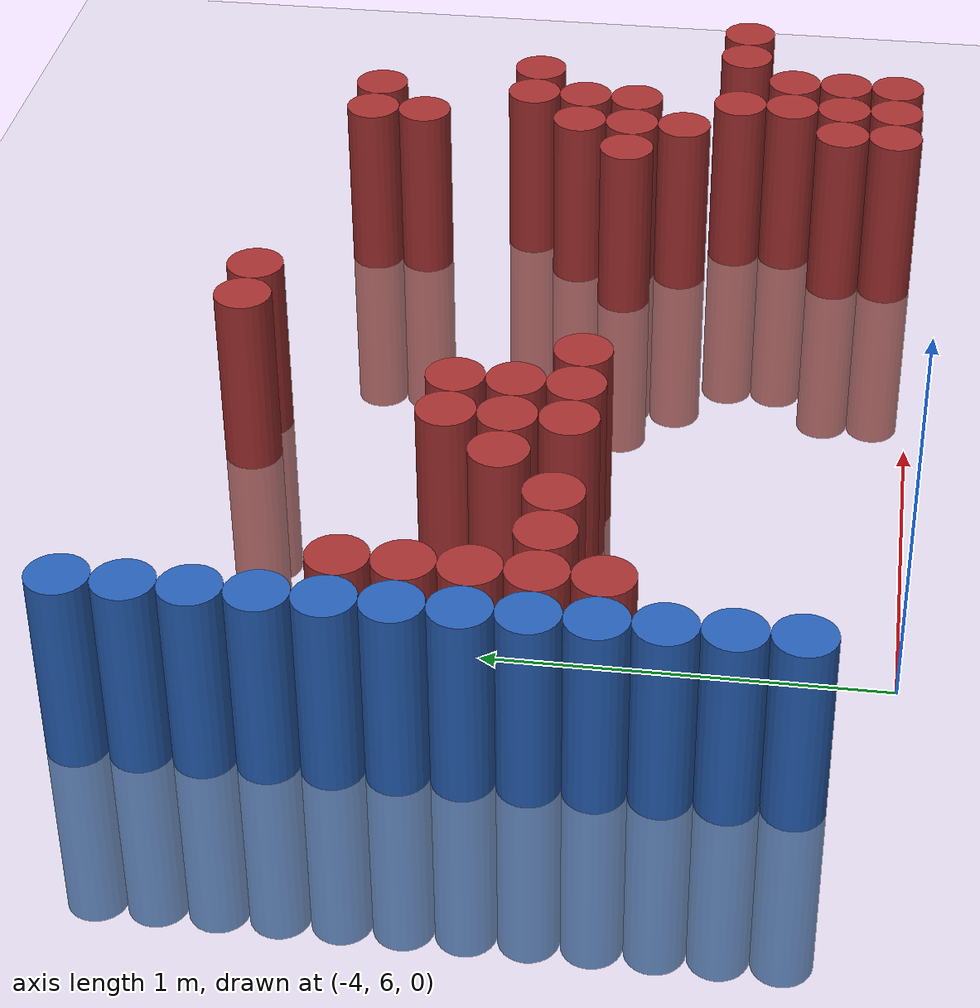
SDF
<sdf version="1.6">
 <world name="default">
  <model name="ground_plane">
   <static>1</static>
   <link name="link">
    <collision name="collision">
     <geometry><plane><normal>0 0 1</normal><size>100 100</size></plane></geometry>
     <surface><friction><ode><mu>100</mu><mu2>50</mu2></ode></friction></surface>
    </collision>
    <visual name="visual">
     <cast_shadows>0</cast_shadows>
     <geometry><plane><normal>0 0 1</normal><size>100 100</size></plane></geometry>
     <material>
      <script><uri>file://media/materials/scripts/gazebo.material</uri><name>Gazebo/Grey</name></script>
     </material>
    </visual>
   </link>
  </model>
  <model name="unit_cylinder_103">
   <static>1</static>
   <pose>-4.425000 6.225000 0.000000 0.000000 0.000000 0.000000</pose>
   <link name="link">
    <inertial>
     <mass>1</mass>
     <inertia><ixx>0.145833</ixx><ixy>0</ixy><ixz>0</ixz><iyy>0.145833</iyy><iyz>0</iyz><izz>0.125</izz></inertia>
    </inertial>
    <collision name="collision">
     <geometry><cylinder><radius>0.075000</radius><length>1</length></cylinder></geometry>
    </collision>
    <visual name="visual">
     <geometry><cylinder><radius>0.075000</radius><length>1</length></cylinder></geometry>
     <material>
      <ambient>0.152000 0.379000 0.720000 1</ambient>
      <diffuse>0.152000 0.379000 0.720000 1</diffuse>
     </material>
     <material>
      <script><name>Gazebo/Grey</name><uri>file://media/materials/scripts/gazebo.material</uri></script>
     </material>
    </visual>
   </link>
  </model>
  <model name="unit_cylinder_104">
   <static>1</static>
   <pose>-4.425000 6.375000 0.000000 0.000000 0.000000 0.000000</pose>
   <link name="link">
    <inertial>
     <mass>1</mass>
     <inertia><ixx>0.145833</ixx><ixy>0</ixy><ixz>0</ixz><iyy>0.145833</iyy><iyz>0</iyz><izz>0.125</izz></inertia>
    </inertial>
    <collision name="collision">
     <geometry><cylinder><radius>0.075000</radius><length>1</length></cylinder></geometry>
    </collision>
    <visual name="visual">
     <geometry><cylinder><radius>0.075000</radius><length>1</length></cylinder></geometry>
     <material>
      <ambient>0.152000 0.379000 0.720000 1</ambient>
      <diffuse>0.152000 0.379000 0.720000 1</diffuse>
     </material>
     <material>
      <script><name>Gazebo/Grey</name><uri>file://media/materials/scripts/gazebo.material</uri></script>
     </material>
    </visual>
   </link>
  </model>
  <model name="unit_cylinder_105">
   <static>1</static>
   <pose>-4.425000 6.525000 0.000000 0.000000 0.000000 0.000000</pose>
   <link name="link">
    <inertial>
     <mass>1</mass>
     <inertia><ixx>0.145833</ixx><ixy>0</ixy><ixz>0</ixz><iyy>0.145833</iyy><iyz>0</iyz><izz>0.125</izz></inertia>
    </inertial>
    <collision name="collision">
     <geometry><cylinder><radius>0.075000</radius><length>1</length></cylinder></geometry>
    </collision>
    <visual name="visual">
     <geometry><cylinder><radius>0.075000</radius><length>1</length></cylinder></geometry>
     <material>
      <ambient>0.152000 0.379000 0.720000 1</ambient>
      <diffuse>0.152000 0.379000 0.720000 1</diffuse>
     </material>
     <material>
      <script><name>Gazebo/Grey</name><uri>file://media/materials/scripts/gazebo.material</uri></script>
     </material>
    </visual>
   </link>
  </model>
  <model name="unit_cylinder_106">
   <static>1</static>
   <pose>-4.425000 6.675000 0.000000 0.000000 0.000000 0.000000</pose>
   <link name="link">
    <inertial>
     <mass>1</mass>
     <inertia><ixx>0.145833</ixx><ixy>0</ixy><ixz>0</ixz><iyy>0.145833</iyy><iyz>0</iyz><izz>0.125</izz></inertia>
    </inertial>
    <collision name="collision">
     <geometry><cylinder><radius>0.075000</radius><length>1</length></cylinder></geometry>
    </collision>
    <visual name="visual">
     <geometry><cylinder><radius>0.075000</radius><length>1</length></cylinder></geometry>
     <material>
      <ambient>0.152000 0.379000 0.720000 1</ambient>
      <diffuse>0.152000 0.379000 0.720000 1</diffuse>
     </material>
     <material>
      <script><name>Gazebo/Grey</name><uri>file://media/materials/scripts/gazebo.material</uri></script>
     </material>
    </visual>
   </link>
  </model>
  <model name="unit_cylinder_107">
   <static>1</static>
   <pose>-4.425000 6.825000 0.000000 0.000000 0.000000 0.000000</pose>
   <link name="link">
    <inertial>
     <mass>1</mass>
     <inertia><ixx>0.145833</ixx><ixy>0</ixy><ixz>0</ixz><iyy>0.145833</iyy><iyz>0</iyz><izz>0.125</izz></inertia>
    </inertial>
    <collision name="collision">
     <geometry><cylinder><radius>0.075000</radius><length>1</length></cylinder></geometry>
    </collision>
    <visual name="visual">
     <geometry><cylinder><radius>0.075000</radius><length>1</length></cylinder></geometry>
     <material>
      <ambient>0.152000 0.379000 0.720000 1</ambient>
      <diffuse>0.152000 0.379000 0.720000 1</diffuse>
     </material>
     <material>
      <script><name>Gazebo/Grey</name><uri>file://media/materials/scripts/gazebo.material</uri></script>
     </material>
    </visual>
   </link>
  </model>
  <model name="unit_cylinder_108">
   <static>1</static>
   <pose>-4.425000 6.975000 0.000000 0.000000 0.000000 0.000000</pose>
   <link name="link">
    <inertial>
     <mass>1</mass>
     <inertia><ixx>0.145833</ixx><ixy>0</ixy><ixz>0</ixz><iyy>0.145833</iyy><iyz>0</iyz><izz>0.125</izz></inertia>
    </inertial>
    <collision name="collision">
     <geometry><cylinder><radius>0.075000</radius><length>1</length></cylinder></geometry>
    </collision>
    <visual name="visual">
     <geometry><cylinder><radius>0.075000</radius><length>1</length></cylinder></geometry>
     <material>
      <ambient>0.152000 0.379000 0.720000 1</ambient>
      <diffuse>0.152000 0.379000 0.720000 1</diffuse>
     </material>
     <material>
      <script><name>Gazebo/Grey</name><uri>file://media/materials/scripts/gazebo.material</uri></script>
     </material>
    </visual>
   </link>
  </model>
  <model name="unit_cylinder_109">
   <static>1</static>
   <pose>-4.425000 7.125000 0.000000 0.000000 0.000000 0.000000</pose>
   <link name="link">
    <inertial>
     <mass>1</mass>
     <inertia><ixx>0.145833</ixx><ixy>0</ixy><ixz>0</ixz><iyy>0.145833</iyy><iyz>0</iyz><izz>0.125</izz></inertia>
    </inertial>
    <collision name="collision">
     <geometry><cylinder><radius>0.075000</radius><length>1</length></cylinder></geometry>
    </collision>
    <visual name="visual">
     <geometry><cylinder><radius>0.075000</radius><length>1</length></cylinder></geometry>
     <material>
      <ambient>0.152000 0.379000 0.720000 1</ambient>
      <diffuse>0.152000 0.379000 0.720000 1</diffuse>
     </material>
     <material>
      <script><name>Gazebo/Grey</name><uri>file://media/materials/scripts/gazebo.material</uri></script>
     </material>
    </visual>
   </link>
  </model>
  <model name="unit_cylinder_110">
   <static>1</static>
   <pose>-4.425000 7.275000 0.000000 0.000000 0.000000 0.000000</pose>
   <link name="link">
    <inertial>
     <mass>1</mass>
     <inertia><ixx>0.145833</ixx><ixy>0</ixy><ixz>0</ixz><iyy>0.145833</iyy><iyz>0</iyz><izz>0.125</izz></inertia>
    </inertial>
    <collision name="collision">
     <geometry><cylinder><radius>0.075000</radius><length>1</length></cylinder></geometry>
    </collision>
    <visual name="visual">
     <geometry><cylinder><radius>0.075000</radius><length>1</length></cylinder></geometry>
     <material>
      <ambient>0.152000 0.379000 0.720000 1</ambient>
      <diffuse>0.152000 0.379000 0.720000 1</diffuse>
     </material>
     <material>
      <script><name>Gazebo/Grey</name><uri>file://media/materials/scripts/gazebo.material</uri></script>
     </material>
    </visual>
   </link>
  </model>
  <model name="unit_cylinder_111">
   <static>1</static>
   <pose>-4.425000 7.425000 0.000000 0.000000 0.000000 0.000000</pose>
   <link name="link">
    <inertial>
     <mass>1</mass>
     <inertia><ixx>0.145833</ixx><ixy>0</ixy><ixz>0</ixz><iyy>0.145833</iyy><iyz>0</iyz><izz>0.125</izz></inertia>
    </inertial>
    <collision name="collision">
     <geometry><cylinder><radius>0.075000</radius><length>1</length></cylinder></geometry>
    </collision>
    <visual name="visual">
     <geometry><cylinder><radius>0.075000</radius><length>1</length></cylinder></geometry>
     <material>
      <ambient>0.152000 0.379000 0.720000 1</ambient>
      <diffuse>0.152000 0.379000 0.720000 1</diffuse>
     </material>
     <material>
      <script><name>Gazebo/Grey</name><uri>file://media/materials/scripts/gazebo.material</uri></script>
     </material>
    </visual>
   </link>
  </model>
  <model name="unit_cylinder_112">
   <static>1</static>
   <pose>-4.425000 7.575000 0.000000 0.000000 0.000000 0.000000</pose>
   <link name="link">
    <inertial>
     <mass>1</mass>
     <inertia><ixx>0.145833</ixx><ixy>0</ixy><ixz>0</ixz><iyy>0.145833</iyy><iyz>0</iyz><izz>0.125</izz></inertia>
    </inertial>
    <collision name="collision">
     <geometry><cylinder><radius>0.075000</radius><length>1</length></cylinder></geometry>
    </collision>
    <visual name="visual">
     <geometry><cylinder><radius>0.075000</radius><length>1</length></cylinder></geometry>
     <material>
      <ambient>0.152000 0.379000 0.720000 1</ambient>
      <diffuse>0.152000 0.379000 0.720000 1</diffuse>
     </material>
     <material>
      <script><name>Gazebo/Grey</name><uri>file://media/materials/scripts/gazebo.material</uri></script>
     </material>
    </visual>
   </link>
  </model>
  <model name="unit_cylinder_113">
   <static>1</static>
   <pose>-4.425000 7.725000 0.000000 0.000000 0.000000 0.000000</pose>
   <link name="link">
    <inertial>
     <mass>1</mass>
     <inertia><ixx>0.145833</ixx><ixy>0</ixy><ixz>0</ixz><iyy>0.145833</iyy><iyz>0</iyz><izz>0.125</izz></inertia>
    </inertial>
    <collision name="collision">
     <geometry><cylinder><radius>0.075000</radius><length>1</length></cylinder></geometry>
    </collision>
    <visual name="visual">
     <geometry><cylinder><radius>0.075000</radius><length>1</length></cylinder></geometry>
     <material>
      <ambient>0.152000 0.379000 0.720000 1</ambient>
      <diffuse>0.152000 0.379000 0.720000 1</diffuse>
     </material>
     <material>
      <script><name>Gazebo/Grey</name><uri>file://media/materials/scripts/gazebo.material</uri></script>
     </material>
    </visual>
   </link>
  </model>
  <model name="unit_cylinder_114">
   <static>1</static>
   <pose>-4.425000 7.875000 0.000000 0.000000 0.000000 0.000000</pose>
   <link name="link">
    <inertial>
     <mass>1</mass>
     <inertia><ixx>0.145833</ixx><ixy>0</ixy><ixz>0</ixz><iyy>0.145833</iyy><iyz>0</iyz><izz>0.125</izz></inertia>
    </inertial>
    <collision name="collision">
     <geometry><cylinder><radius>0.075000</radius><length>1</length></cylinder></geometry>
    </collision>
    <visual name="visual">
     <geometry><cylinder><radius>0.075000</radius><length>1</length></cylinder></geometry>
     <material>
      <ambient>0.152000 0.379000 0.720000 1</ambient>
      <diffuse>0.152000 0.379000 0.720000 1</diffuse>
     </material>
     <material>
      <script><name>Gazebo/Grey</name><uri>file://media/materials/scripts/gazebo.material</uri></script>
     </material>
    </visual>
   </link>
  </model>
  <model name="unit_cylinder_129">
   <static>1</static>
   <pose>-4.275000 6.675000 0.000000 0.000000 0.000000 0.000000</pose>
   <link name="link">
    <inertial>
     <mass>1</mass>
     <inertia><ixx>0.145833</ixx><ixy>0</ixy><ixz>0</ixz><iyy>0.145833</iyy><iyz>0</iyz><izz>0.125</izz></inertia>
    </inertial>
    <collision name="collision">
     <geometry><cylinder><radius>0.075000</radius><length>1</length></cylinder></geometry>
    </collision>
    <visual name="visual">
     <geometry><cylinder><radius>0.075000</radius><length>1</length></cylinder></geometry>
     <material>
      <ambient>0.648000 0.192000 0.192000 1</ambient>
      <diffuse>0.648000 0.192000 0.192000 1</diffuse>
     </material>
     <material>
      <script><name>Gazebo/Grey</name><uri>file://media/materials/scripts/gazebo.material</uri></script>
     </material>
    </visual>
   </link>
  </model>
  <model name="unit_cylinder_130">
   <static>1</static>
   <pose>-4.275000 6.825000 0.000000 0.000000 0.000000 0.000000</pose>
   <link name="link">
    <inertial>
     <mass>1</mass>
     <inertia><ixx>0.145833</ixx><ixy>0</ixy><ixz>0</ixz><iyy>0.145833</iyy><iyz>0</iyz><izz>0.125</izz></inertia>
    </inertial>
    <collision name="collision">
     <geometry><cylinder><radius>0.075000</radius><length>1</length></cylinder></geometry>
    </collision>
    <visual name="visual">
     <geometry><cylinder><radius>0.075000</radius><length>1</length></cylinder></geometry>
     <material>
      <ambient>0.648000 0.192000 0.192000 1</ambient>
      <diffuse>0.648000 0.192000 0.192000 1</diffuse>
     </material>
     <material>
      <script><name>Gazebo/Grey</name><uri>file://media/materials/scripts/gazebo.material</uri></script>
     </material>
    </visual>
   </link>
  </model>
  <model name="unit_cylinder_131">
   <static>1</static>
   <pose>-4.275000 6.975000 0.000000 0.000000 0.000000 0.000000</pose>
   <link name="link">
    <inertial>
     <mass>1</mass>
     <inertia><ixx>0.145833</ixx><ixy>0</ixy><ixz>0</ixz><iyy>0.145833</iyy><iyz>0</iyz><izz>0.125</izz></inertia>
    </inertial>
    <collision name="collision">
     <geometry><cylinder><radius>0.075000</radius><length>1</length></cylinder></geometry>
    </collision>
    <visual name="visual">
     <geometry><cylinder><radius>0.075000</radius><length>1</length></cylinder></geometry>
     <material>
      <ambient>0.648000 0.192000 0.192000 1</ambient>
      <diffuse>0.648000 0.192000 0.192000 1</diffuse>
     </material>
     <material>
      <script><name>Gazebo/Grey</name><uri>file://media/materials/scripts/gazebo.material</uri></script>
     </material>
    </visual>
   </link>
  </model>
  <model name="unit_cylinder_132">
   <static>1</static>
   <pose>-4.275000 7.125000 0.000000 0.000000 0.000000 0.000000</pose>
   <link name="link">
    <inertial>
     <mass>1</mass>
     <inertia><ixx>0.145833</ixx><ixy>0</ixy><ixz>0</ixz><iyy>0.145833</iyy><iyz>0</iyz><izz>0.125</izz></inertia>
    </inertial>
    <collision name="collision">
     <geometry><cylinder><radius>0.075000</radius><length>1</length></cylinder></geometry>
    </collision>
    <visual name="visual">
     <geometry><cylinder><radius>0.075000</radius><length>1</length></cylinder></geometry>
     <material>
      <ambient>0.648000 0.192000 0.192000 1</ambient>
      <diffuse>0.648000 0.192000 0.192000 1</diffuse>
     </material>
     <material>
      <script><name>Gazebo/Grey</name><uri>file://media/materials/scripts/gazebo.material</uri></script>
     </material>
    </visual>
   </link>
  </model>
  <model name="unit_cylinder_133">
   <static>1</static>
   <pose>-4.275000 7.275000 0.000000 0.000000 0.000000 0.000000</pose>
   <link name="link">
    <inertial>
     <mass>1</mass>
     <inertia><ixx>0.145833</ixx><ixy>0</ixy><ixz>0</ixz><iyy>0.145833</iyy><iyz>0</iyz><izz>0.125</izz></inertia>
    </inertial>
    <collision name="collision">
     <geometry><cylinder><radius>0.075000</radius><length>1</length></cylinder></geometry>
    </collision>
    <visual name="visual">
     <geometry><cylinder><radius>0.075000</radius><length>1</length></cylinder></geometry>
     <material>
      <ambient>0.648000 0.192000 0.192000 1</ambient>
      <diffuse>0.648000 0.192000 0.192000 1</diffuse>
     </material>
     <material>
      <script><name>Gazebo/Grey</name><uri>file://media/materials/scripts/gazebo.material</uri></script>
     </material>
    </visual>
   </link>
  </model>
  <model name="unit_cylinder_140">
   <static>1</static>
   <pose>-4.125000 6.825000 0.000000 0.000000 0.000000 0.000000</pose>
   <link name="link">
    <inertial>
     <mass>1</mass>
     <inertia><ixx>0.145833</ixx><ixy>0</ixy><ixz>0</ixz><iyy>0.145833</iyy><iyz>0</iyz><izz>0.125</izz></inertia>
    </inertial>
    <collision name="collision">
     <geometry><cylinder><radius>0.075000</radius><length>1</length></cylinder></geometry>
    </collision>
    <visual name="visual">
     <geometry><cylinder><radius>0.075000</radius><length>1</length></cylinder></geometry>
     <material>
      <ambient>0.648000 0.192000 0.192000 1</ambient>
      <diffuse>0.648000 0.192000 0.192000 1</diffuse>
     </material>
     <material>
      <script><name>Gazebo/Grey</name><uri>file://media/materials/scripts/gazebo.material</uri></script>
     </material>
    </visual>
   </link>
  </model>
  <model name="unit_cylinder_148">
   <static>1</static>
   <pose>-3.975000 6.825000 0.000000 0.000000 0.000000 0.000000</pose>
   <link name="link">
    <inertial>
     <mass>1</mass>
     <inertia><ixx>0.145833</ixx><ixy>0</ixy><ixz>0</ixz><iyy>0.145833</iyy><iyz>0</iyz><izz>0.125</izz></inertia>
    </inertial>
    <collision name="collision">
     <geometry><cylinder><radius>0.075000</radius><length>1</length></cylinder></geometry>
    </collision>
    <visual name="visual">
     <geometry><cylinder><radius>0.075000</radius><length>1</length></cylinder></geometry>
     <material>
      <ambient>0.648000 0.192000 0.192000 1</ambient>
      <diffuse>0.648000 0.192000 0.192000 1</diffuse>
     </material>
     <material>
      <script><name>Gazebo/Grey</name><uri>file://media/materials/scripts/gazebo.material</uri></script>
     </material>
    </visual>
   </link>
  </model>
  <model name="unit_cylinder_153">
   <static>1</static>
   <pose>-3.825000 6.975000 0.000000 0.000000 0.000000 0.000000</pose>
   <link name="link">
    <inertial>
     <mass>1</mass>
     <inertia><ixx>0.145833</ixx><ixy>0</ixy><ixz>0</ixz><iyy>0.145833</iyy><iyz>0</iyz><izz>0.125</izz></inertia>
    </inertial>
    <collision name="collision">
     <geometry><cylinder><radius>0.075000</radius><length>1</length></cylinder></geometry>
    </collision>
    <visual name="visual">
     <geometry><cylinder><radius>0.075000</radius><length>1</length></cylinder></geometry>
     <material>
      <ambient>0.648000 0.192000 0.192000 1</ambient>
      <diffuse>0.648000 0.192000 0.192000 1</diffuse>
     </material>
     <material>
      <script><name>Gazebo/Grey</name><uri>file://media/materials/scripts/gazebo.material</uri></script>
     </material>
    </visual>
   </link>
  </model>
  <model name="unit_cylinder_160">
   <static>1</static>
   <pose>-3.675000 6.825000 0.000000 0.000000 0.000000 0.000000</pose>
   <link name="link">
    <inertial>
     <mass>1</mass>
     <inertia><ixx>0.145833</ixx><ixy>0</ixy><ixz>0</ixz><iyy>0.145833</iyy><iyz>0</iyz><izz>0.125</izz></inertia>
    </inertial>
    <collision name="collision">
     <geometry><cylinder><radius>0.075000</radius><length>1</length></cylinder></geometry>
    </collision>
    <visual name="visual">
     <geometry><cylinder><radius>0.075000</radius><length>1</length></cylinder></geometry>
     <material>
      <ambient>0.648000 0.192000 0.192000 1</ambient>
      <diffuse>0.648000 0.192000 0.192000 1</diffuse>
     </material>
     <material>
      <script><name>Gazebo/Grey</name><uri>file://media/materials/scripts/gazebo.material</uri></script>
     </material>
    </visual>
   </link>
  </model>
  <model name="unit_cylinder_161">
   <static>1</static>
   <pose>-3.675000 6.975000 0.000000 0.000000 0.000000 0.000000</pose>
   <link name="link">
    <inertial>
     <mass>1</mass>
     <inertia><ixx>0.145833</ixx><ixy>0</ixy><ixz>0</ixz><iyy>0.145833</iyy><iyz>0</iyz><izz>0.125</izz></inertia>
    </inertial>
    <collision name="collision">
     <geometry><cylinder><radius>0.075000</radius><length>1</length></cylinder></geometry>
    </collision>
    <visual name="visual">
     <geometry><cylinder><radius>0.075000</radius><length>1</length></cylinder></geometry>
     <material>
      <ambient>0.648000 0.192000 0.192000 1</ambient>
      <diffuse>0.648000 0.192000 0.192000 1</diffuse>
     </material>
     <material>
      <script><name>Gazebo/Grey</name><uri>file://media/materials/scripts/gazebo.material</uri></script>
     </material>
    </visual>
   </link>
  </model>
  <model name="unit_cylinder_162">
   <static>1</static>
   <pose>-3.675000 7.125000 0.000000 0.000000 0.000000 0.000000</pose>
   <link name="link">
    <inertial>
     <mass>1</mass>
     <inertia><ixx>0.145833</ixx><ixy>0</ixy><ixz>0</ixz><iyy>0.145833</iyy><iyz>0</iyz><izz>0.125</izz></inertia>
    </inertial>
    <collision name="collision">
     <geometry><cylinder><radius>0.075000</radius><length>1</length></cylinder></geometry>
    </collision>
    <visual name="visual">
     <geometry><cylinder><radius>0.075000</radius><length>1</length></cylinder></geometry>
     <material>
      <ambient>0.648000 0.192000 0.192000 1</ambient>
      <diffuse>0.648000 0.192000 0.192000 1</diffuse>
     </material>
     <material>
      <script><name>Gazebo/Grey</name><uri>file://media/materials/scripts/gazebo.material</uri></script>
     </material>
    </visual>
   </link>
  </model>
  <model name="unit_cylinder_172">
   <static>1</static>
   <pose>-3.525000 6.825000 0.000000 0.000000 0.000000 0.000000</pose>
   <link name="link">
    <inertial>
     <mass>1</mass>
     <inertia><ixx>0.145833</ixx><ixy>0</ixy><ixz>0</ixz><iyy>0.145833</iyy><iyz>0</iyz><izz>0.125</izz></inertia>
    </inertial>
    <collision name="collision">
     <geometry><cylinder><radius>0.075000</radius><length>1</length></cylinder></geometry>
    </collision>
    <visual name="visual">
     <geometry><cylinder><radius>0.075000</radius><length>1</length></cylinder></geometry>
     <material>
      <ambient>0.648000 0.192000 0.192000 1</ambient>
      <diffuse>0.648000 0.192000 0.192000 1</diffuse>
     </material>
     <material>
      <script><name>Gazebo/Grey</name><uri>file://media/materials/scripts/gazebo.material</uri></script>
     </material>
    </visual>
   </link>
  </model>
  <model name="unit_cylinder_173">
   <static>1</static>
   <pose>-3.525000 6.975000 0.000000 0.000000 0.000000 0.000000</pose>
   <link name="link">
    <inertial>
     <mass>1</mass>
     <inertia><ixx>0.145833</ixx><ixy>0</ixy><ixz>0</ixz><iyy>0.145833</iyy><iyz>0</iyz><izz>0.125</izz></inertia>
    </inertial>
    <collision name="collision">
     <geometry><cylinder><radius>0.075000</radius><length>1</length></cylinder></geometry>
    </collision>
    <visual name="visual">
     <geometry><cylinder><radius>0.075000</radius><length>1</length></cylinder></geometry>
     <material>
      <ambient>0.648000 0.192000 0.192000 1</ambient>
      <diffuse>0.648000 0.192000 0.192000 1</diffuse>
     </material>
     <material>
      <script><name>Gazebo/Grey</name><uri>file://media/materials/scripts/gazebo.material</uri></script>
     </material>
    </visual>
   </link>
  </model>
  <model name="unit_cylinder_174">
   <static>1</static>
   <pose>-3.525000 7.125000 0.000000 0.000000 0.000000 0.000000</pose>
   <link name="link">
    <inertial>
     <mass>1</mass>
     <inertia><ixx>0.145833</ixx><ixy>0</ixy><ixz>0</ixz><iyy>0.145833</iyy><iyz>0</iyz><izz>0.125</izz></inertia>
    </inertial>
    <collision name="collision">
     <geometry><cylinder><radius>0.075000</radius><length>1</length></cylinder></geometry>
    </collision>
    <visual name="visual">
     <geometry><cylinder><radius>0.075000</radius><length>1</length></cylinder></geometry>
     <material>
      <ambient>0.648000 0.192000 0.192000 1</ambient>
      <diffuse>0.648000 0.192000 0.192000 1</diffuse>
     </material>
     <material>
      <script><name>Gazebo/Grey</name><uri>file://media/materials/scripts/gazebo.material</uri></script>
     </material>
    </visual>
   </link>
  </model>
  <model name="unit_cylinder_179">
   <static>1</static>
   <pose>-3.375000 6.825000 0.000000 0.000000 0.000000 0.000000</pose>
   <link name="link">
    <inertial>
     <mass>1</mass>
     <inertia><ixx>0.145833</ixx><ixy>0</ixy><ixz>0</ixz><iyy>0.145833</iyy><iyz>0</iyz><izz>0.125</izz></inertia>
    </inertial>
    <collision name="collision">
     <geometry><cylinder><radius>0.075000</radius><length>1</length></cylinder></geometry>
    </collision>
    <visual name="visual">
     <geometry><cylinder><radius>0.075000</radius><length>1</length></cylinder></geometry>
     <material>
      <ambient>0.648000 0.192000 0.192000 1</ambient>
      <diffuse>0.648000 0.192000 0.192000 1</diffuse>
     </material>
     <material>
      <script><name>Gazebo/Grey</name><uri>file://media/materials/scripts/gazebo.material</uri></script>
     </material>
    </visual>
   </link>
  </model>
  <model name="unit_cylinder_185">
   <static>1</static>
   <pose>-3.225000 7.725000 0.000000 0.000000 0.000000 0.000000</pose>
   <link name="link">
    <inertial>
     <mass>1</mass>
     <inertia><ixx>0.145833</ixx><ixy>0</ixy><ixz>0</ixz><iyy>0.145833</iyy><iyz>0</iyz><izz>0.125</izz></inertia>
    </inertial>
    <collision name="collision">
     <geometry><cylinder><radius>0.075000</radius><length>1</length></cylinder></geometry>
    </collision>
    <visual name="visual">
     <geometry><cylinder><radius>0.075000</radius><length>1</length></cylinder></geometry>
     <material>
      <ambient>0.648000 0.192000 0.192000 1</ambient>
      <diffuse>0.648000 0.192000 0.192000 1</diffuse>
     </material>
     <material>
      <script><name>Gazebo/Grey</name><uri>file://media/materials/scripts/gazebo.material</uri></script>
     </material>
    </visual>
   </link>
  </model>
  <model name="unit_cylinder_189">
   <static>1</static>
   <pose>-3.075000 7.725000 0.000000 0.000000 0.000000 0.000000</pose>
   <link name="link">
    <inertial>
     <mass>1</mass>
     <inertia><ixx>0.145833</ixx><ixy>0</ixy><ixz>0</ixz><iyy>0.145833</iyy><iyz>0</iyz><izz>0.125</izz></inertia>
    </inertial>
    <collision name="collision">
     <geometry><cylinder><radius>0.075000</radius><length>1</length></cylinder></geometry>
    </collision>
    <visual name="visual">
     <geometry><cylinder><radius>0.075000</radius><length>1</length></cylinder></geometry>
     <material>
      <ambient>0.648000 0.192000 0.192000 1</ambient>
      <diffuse>0.648000 0.192000 0.192000 1</diffuse>
     </material>
     <material>
      <script><name>Gazebo/Grey</name><uri>file://media/materials/scripts/gazebo.material</uri></script>
     </material>
    </visual>
   </link>
  </model>
  <model name="unit_cylinder_196">
   <static>1</static>
   <pose>-2.325000 6.825000 0.000000 0.000000 0.000000 0.000000</pose>
   <link name="link">
    <inertial>
     <mass>1</mass>
     <inertia><ixx>0.145833</ixx><ixy>0</ixy><ixz>0</ixz><iyy>0.145833</iyy><iyz>0</iyz><izz>0.125</izz></inertia>
    </inertial>
    <collision name="collision">
     <geometry><cylinder><radius>0.075000</radius><length>1</length></cylinder></geometry>
    </collision>
    <visual name="visual">
     <geometry><cylinder><radius>0.075000</radius><length>1</length></cylinder></geometry>
     <material>
      <ambient>0.648000 0.192000 0.192000 1</ambient>
      <diffuse>0.648000 0.192000 0.192000 1</diffuse>
     </material>
     <material>
      <script><name>Gazebo/Grey</name><uri>file://media/materials/scripts/gazebo.material</uri></script>
     </material>
    </visual>
   </link>
  </model>
  <model name="unit_cylinder_199">
   <static>1</static>
   <pose>-2.175000 6.075000 0.000000 0.000000 0.000000 0.000000</pose>
   <link name="link">
    <inertial>
     <mass>1</mass>
     <inertia><ixx>0.145833</ixx><ixy>0</ixy><ixz>0</ixz><iyy>0.145833</iyy><iyz>0</iyz><izz>0.125</izz></inertia>
    </inertial>
    <collision name="collision">
     <geometry><cylinder><radius>0.075000</radius><length>1</length></cylinder></geometry>
    </collision>
    <visual name="visual">
     <geometry><cylinder><radius>0.075000</radius><length>1</length></cylinder></geometry>
     <material>
      <ambient>0.648000 0.192000 0.192000 1</ambient>
      <diffuse>0.648000 0.192000 0.192000 1</diffuse>
     </material>
     <material>
      <script><name>Gazebo/Grey</name><uri>file://media/materials/scripts/gazebo.material</uri></script>
     </material>
    </visual>
   </link>
  </model>
  <model name="unit_cylinder_200">
   <static>1</static>
   <pose>-2.175000 6.225000 0.000000 0.000000 0.000000 0.000000</pose>
   <link name="link">
    <inertial>
     <mass>1</mass>
     <inertia><ixx>0.145833</ixx><ixy>0</ixy><ixz>0</ixz><iyy>0.145833</iyy><iyz>0</iyz><izz>0.125</izz></inertia>
    </inertial>
    <collision name="collision">
     <geometry><cylinder><radius>0.075000</radius><length>1</length></cylinder></geometry>
    </collision>
    <visual name="visual">
     <geometry><cylinder><radius>0.075000</radius><length>1</length></cylinder></geometry>
     <material>
      <ambient>0.648000 0.192000 0.192000 1</ambient>
      <diffuse>0.648000 0.192000 0.192000 1</diffuse>
     </material>
     <material>
      <script><name>Gazebo/Grey</name><uri>file://media/materials/scripts/gazebo.material</uri></script>
     </material>
    </visual>
   </link>
  </model>
  <model name="unit_cylinder_201">
   <static>1</static>
   <pose>-2.175000 6.675000 0.000000 0.000000 0.000000 0.000000</pose>
   <link name="link">
    <inertial>
     <mass>1</mass>
     <inertia><ixx>0.145833</ixx><ixy>0</ixy><ixz>0</ixz><iyy>0.145833</iyy><iyz>0</iyz><izz>0.125</izz></inertia>
    </inertial>
    <collision name="collision">
     <geometry><cylinder><radius>0.075000</radius><length>1</length></cylinder></geometry>
    </collision>
    <visual name="visual">
     <geometry><cylinder><radius>0.075000</radius><length>1</length></cylinder></geometry>
     <material>
      <ambient>0.648000 0.192000 0.192000 1</ambient>
      <diffuse>0.648000 0.192000 0.192000 1</diffuse>
     </material>
     <material>
      <script><name>Gazebo/Grey</name><uri>file://media/materials/scripts/gazebo.material</uri></script>
     </material>
    </visual>
   </link>
  </model>
  <model name="unit_cylinder_202">
   <static>1</static>
   <pose>-2.175000 6.825000 0.000000 0.000000 0.000000 0.000000</pose>
   <link name="link">
    <inertial>
     <mass>1</mass>
     <inertia><ixx>0.145833</ixx><ixy>0</ixy><ixz>0</ixz><iyy>0.145833</iyy><iyz>0</iyz><izz>0.125</izz></inertia>
    </inertial>
    <collision name="collision">
     <geometry><cylinder><radius>0.075000</radius><length>1</length></cylinder></geometry>
    </collision>
    <visual name="visual">
     <geometry><cylinder><radius>0.075000</radius><length>1</length></cylinder></geometry>
     <material>
      <ambient>0.648000 0.192000 0.192000 1</ambient>
      <diffuse>0.648000 0.192000 0.192000 1</diffuse>
     </material>
     <material>
      <script><name>Gazebo/Grey</name><uri>file://media/materials/scripts/gazebo.material</uri></script>
     </material>
    </visual>
   </link>
  </model>
  <model name="unit_cylinder_203">
   <static>1</static>
   <pose>-2.175000 6.975000 0.000000 0.000000 0.000000 0.000000</pose>
   <link name="link">
    <inertial>
     <mass>1</mass>
     <inertia><ixx>0.145833</ixx><ixy>0</ixy><ixz>0</ixz><iyy>0.145833</iyy><iyz>0</iyz><izz>0.125</izz></inertia>
    </inertial>
    <collision name="collision">
     <geometry><cylinder><radius>0.075000</radius><length>1</length></cylinder></geometry>
    </collision>
    <visual name="visual">
     <geometry><cylinder><radius>0.075000</radius><length>1</length></cylinder></geometry>
     <material>
      <ambient>0.648000 0.192000 0.192000 1</ambient>
      <diffuse>0.648000 0.192000 0.192000 1</diffuse>
     </material>
     <material>
      <script><name>Gazebo/Grey</name><uri>file://media/materials/scripts/gazebo.material</uri></script>
     </material>
    </visual>
   </link>
  </model>
  <model name="unit_cylinder_204">
   <static>1</static>
   <pose>-2.175000 7.425000 0.000000 0.000000 0.000000 0.000000</pose>
   <link name="link">
    <inertial>
     <mass>1</mass>
     <inertia><ixx>0.145833</ixx><ixy>0</ixy><ixz>0</ixz><iyy>0.145833</iyy><iyz>0</iyz><izz>0.125</izz></inertia>
    </inertial>
    <collision name="collision">
     <geometry><cylinder><radius>0.075000</radius><length>1</length></cylinder></geometry>
    </collision>
    <visual name="visual">
     <geometry><cylinder><radius>0.075000</radius><length>1</length></cylinder></geometry>
     <material>
      <ambient>0.648000 0.192000 0.192000 1</ambient>
      <diffuse>0.648000 0.192000 0.192000 1</diffuse>
     </material>
     <material>
      <script><name>Gazebo/Grey</name><uri>file://media/materials/scripts/gazebo.material</uri></script>
     </material>
    </visual>
   </link>
  </model>
  <model name="unit_cylinder_205">
   <static>1</static>
   <pose>-2.175000 7.575000 0.000000 0.000000 0.000000 0.000000</pose>
   <link name="link">
    <inertial>
     <mass>1</mass>
     <inertia><ixx>0.145833</ixx><ixy>0</ixy><ixz>0</ixz><iyy>0.145833</iyy><iyz>0</iyz><izz>0.125</izz></inertia>
    </inertial>
    <collision name="collision">
     <geometry><cylinder><radius>0.075000</radius><length>1</length></cylinder></geometry>
    </collision>
    <visual name="visual">
     <geometry><cylinder><radius>0.075000</radius><length>1</length></cylinder></geometry>
     <material>
      <ambient>0.648000 0.192000 0.192000 1</ambient>
      <diffuse>0.648000 0.192000 0.192000 1</diffuse>
     </material>
     <material>
      <script><name>Gazebo/Grey</name><uri>file://media/materials/scripts/gazebo.material</uri></script>
     </material>
    </visual>
   </link>
  </model>
  <model name="unit_cylinder_209">
   <static>1</static>
   <pose>-2.025000 6.075000 0.000000 0.000000 0.000000 0.000000</pose>
   <link name="link">
    <inertial>
     <mass>1</mass>
     <inertia><ixx>0.145833</ixx><ixy>0</ixy><ixz>0</ixz><iyy>0.145833</iyy><iyz>0</iyz><izz>0.125</izz></inertia>
    </inertial>
    <collision name="collision">
     <geometry><cylinder><radius>0.075000</radius><length>1</length></cylinder></geometry>
    </collision>
    <visual name="visual">
     <geometry><cylinder><radius>0.075000</radius><length>1</length></cylinder></geometry>
     <material>
      <ambient>0.648000 0.192000 0.192000 1</ambient>
      <diffuse>0.648000 0.192000 0.192000 1</diffuse>
     </material>
     <material>
      <script><name>Gazebo/Grey</name><uri>file://media/materials/scripts/gazebo.material</uri></script>
     </material>
    </visual>
   </link>
  </model>
  <model name="unit_cylinder_210">
   <static>1</static>
   <pose>-2.025000 6.225000 0.000000 0.000000 0.000000 0.000000</pose>
   <link name="link">
    <inertial>
     <mass>1</mass>
     <inertia><ixx>0.145833</ixx><ixy>0</ixy><ixz>0</ixz><iyy>0.145833</iyy><iyz>0</iyz><izz>0.125</izz></inertia>
    </inertial>
    <collision name="collision">
     <geometry><cylinder><radius>0.075000</radius><length>1</length></cylinder></geometry>
    </collision>
    <visual name="visual">
     <geometry><cylinder><radius>0.075000</radius><length>1</length></cylinder></geometry>
     <material>
      <ambient>0.648000 0.192000 0.192000 1</ambient>
      <diffuse>0.648000 0.192000 0.192000 1</diffuse>
     </material>
     <material>
      <script><name>Gazebo/Grey</name><uri>file://media/materials/scripts/gazebo.material</uri></script>
     </material>
    </visual>
   </link>
  </model>
  <model name="unit_cylinder_211">
   <static>1</static>
   <pose>-2.025000 6.375000 0.000000 0.000000 0.000000 0.000000</pose>
   <link name="link">
    <inertial>
     <mass>1</mass>
     <inertia><ixx>0.145833</ixx><ixy>0</ixy><ixz>0</ixz><iyy>0.145833</iyy><iyz>0</iyz><izz>0.125</izz></inertia>
    </inertial>
    <collision name="collision">
     <geometry><cylinder><radius>0.075000</radius><length>1</length></cylinder></geometry>
    </collision>
    <visual name="visual">
     <geometry><cylinder><radius>0.075000</radius><length>1</length></cylinder></geometry>
     <material>
      <ambient>0.648000 0.192000 0.192000 1</ambient>
      <diffuse>0.648000 0.192000 0.192000 1</diffuse>
     </material>
     <material>
      <script><name>Gazebo/Grey</name><uri>file://media/materials/scripts/gazebo.material</uri></script>
     </material>
    </visual>
   </link>
  </model>
  <model name="unit_cylinder_212">
   <static>1</static>
   <pose>-2.025000 6.525000 0.000000 0.000000 0.000000 0.000000</pose>
   <link name="link">
    <inertial>
     <mass>1</mass>
     <inertia><ixx>0.145833</ixx><ixy>0</ixy><ixz>0</ixz><iyy>0.145833</iyy><iyz>0</iyz><izz>0.125</izz></inertia>
    </inertial>
    <collision name="collision">
     <geometry><cylinder><radius>0.075000</radius><length>1</length></cylinder></geometry>
    </collision>
    <visual name="visual">
     <geometry><cylinder><radius>0.075000</radius><length>1</length></cylinder></geometry>
     <material>
      <ambient>0.648000 0.192000 0.192000 1</ambient>
      <diffuse>0.648000 0.192000 0.192000 1</diffuse>
     </material>
     <material>
      <script><name>Gazebo/Grey</name><uri>file://media/materials/scripts/gazebo.material</uri></script>
     </material>
    </visual>
   </link>
  </model>
  <model name="unit_cylinder_213">
   <static>1</static>
   <pose>-2.025000 6.825000 0.000000 0.000000 0.000000 0.000000</pose>
   <link name="link">
    <inertial>
     <mass>1</mass>
     <inertia><ixx>0.145833</ixx><ixy>0</ixy><ixz>0</ixz><iyy>0.145833</iyy><iyz>0</iyz><izz>0.125</izz></inertia>
    </inertial>
    <collision name="collision">
     <geometry><cylinder><radius>0.075000</radius><length>1</length></cylinder></geometry>
    </collision>
    <visual name="visual">
     <geometry><cylinder><radius>0.075000</radius><length>1</length></cylinder></geometry>
     <material>
      <ambient>0.648000 0.192000 0.192000 1</ambient>
      <diffuse>0.648000 0.192000 0.192000 1</diffuse>
     </material>
     <material>
      <script><name>Gazebo/Grey</name><uri>file://media/materials/scripts/gazebo.material</uri></script>
     </material>
    </visual>
   </link>
  </model>
  <model name="unit_cylinder_214">
   <static>1</static>
   <pose>-2.025000 6.975000 0.000000 0.000000 0.000000 0.000000</pose>
   <link name="link">
    <inertial>
     <mass>1</mass>
     <inertia><ixx>0.145833</ixx><ixy>0</ixy><ixz>0</ixz><iyy>0.145833</iyy><iyz>0</iyz><izz>0.125</izz></inertia>
    </inertial>
    <collision name="collision">
     <geometry><cylinder><radius>0.075000</radius><length>1</length></cylinder></geometry>
    </collision>
    <visual name="visual">
     <geometry><cylinder><radius>0.075000</radius><length>1</length></cylinder></geometry>
     <material>
      <ambient>0.648000 0.192000 0.192000 1</ambient>
      <diffuse>0.648000 0.192000 0.192000 1</diffuse>
     </material>
     <material>
      <script><name>Gazebo/Grey</name><uri>file://media/materials/scripts/gazebo.material</uri></script>
     </material>
    </visual>
   </link>
  </model>
  <model name="unit_cylinder_215">
   <static>1</static>
   <pose>-2.025000 7.125000 0.000000 0.000000 0.000000 0.000000</pose>
   <link name="link">
    <inertial>
     <mass>1</mass>
     <inertia><ixx>0.145833</ixx><ixy>0</ixy><ixz>0</ixz><iyy>0.145833</iyy><iyz>0</iyz><izz>0.125</izz></inertia>
    </inertial>
    <collision name="collision">
     <geometry><cylinder><radius>0.075000</radius><length>1</length></cylinder></geometry>
    </collision>
    <visual name="visual">
     <geometry><cylinder><radius>0.075000</radius><length>1</length></cylinder></geometry>
     <material>
      <ambient>0.648000 0.192000 0.192000 1</ambient>
      <diffuse>0.648000 0.192000 0.192000 1</diffuse>
     </material>
     <material>
      <script><name>Gazebo/Grey</name><uri>file://media/materials/scripts/gazebo.material</uri></script>
     </material>
    </visual>
   </link>
  </model>
  <model name="unit_cylinder_216">
   <static>1</static>
   <pose>-2.025000 7.575000 0.000000 0.000000 0.000000 0.000000</pose>
   <link name="link">
    <inertial>
     <mass>1</mass>
     <inertia><ixx>0.145833</ixx><ixy>0</ixy><ixz>0</ixz><iyy>0.145833</iyy><iyz>0</iyz><izz>0.125</izz></inertia>
    </inertial>
    <collision name="collision">
     <geometry><cylinder><radius>0.075000</radius><length>1</length></cylinder></geometry>
    </collision>
    <visual name="visual">
     <geometry><cylinder><radius>0.075000</radius><length>1</length></cylinder></geometry>
     <material>
      <ambient>0.648000 0.192000 0.192000 1</ambient>
      <diffuse>0.648000 0.192000 0.192000 1</diffuse>
     </material>
     <material>
      <script><name>Gazebo/Grey</name><uri>file://media/materials/scripts/gazebo.material</uri></script>
     </material>
    </visual>
   </link>
  </model>
  <model name="unit_cylinder_220">
   <static>1</static>
   <pose>-1.875000 6.075000 0.000000 0.000000 0.000000 0.000000</pose>
   <link name="link">
    <inertial>
     <mass>1</mass>
     <inertia><ixx>0.145833</ixx><ixy>0</ixy><ixz>0</ixz><iyy>0.145833</iyy><iyz>0</iyz><izz>0.125</izz></inertia>
    </inertial>
    <collision name="collision">
     <geometry><cylinder><radius>0.075000</radius><length>1</length></cylinder></geometry>
    </collision>
    <visual name="visual">
     <geometry><cylinder><radius>0.075000</radius><length>1</length></cylinder></geometry>
     <material>
      <ambient>0.648000 0.192000 0.192000 1</ambient>
      <diffuse>0.648000 0.192000 0.192000 1</diffuse>
     </material>
     <material>
      <script><name>Gazebo/Grey</name><uri>file://media/materials/scripts/gazebo.material</uri></script>
     </material>
    </visual>
   </link>
  </model>
  <model name="unit_cylinder_221">
   <static>1</static>
   <pose>-1.875000 6.225000 0.000000 0.000000 0.000000 0.000000</pose>
   <link name="link">
    <inertial>
     <mass>1</mass>
     <inertia><ixx>0.145833</ixx><ixy>0</ixy><ixz>0</ixz><iyy>0.145833</iyy><iyz>0</iyz><izz>0.125</izz></inertia>
    </inertial>
    <collision name="collision">
     <geometry><cylinder><radius>0.075000</radius><length>1</length></cylinder></geometry>
    </collision>
    <visual name="visual">
     <geometry><cylinder><radius>0.075000</radius><length>1</length></cylinder></geometry>
     <material>
      <ambient>0.648000 0.192000 0.192000 1</ambient>
      <diffuse>0.648000 0.192000 0.192000 1</diffuse>
     </material>
     <material>
      <script><name>Gazebo/Grey</name><uri>file://media/materials/scripts/gazebo.material</uri></script>
     </material>
    </visual>
   </link>
  </model>
  <model name="unit_cylinder_222">
   <static>1</static>
   <pose>-1.875000 6.375000 0.000000 0.000000 0.000000 0.000000</pose>
   <link name="link">
    <inertial>
     <mass>1</mass>
     <inertia><ixx>0.145833</ixx><ixy>0</ixy><ixz>0</ixz><iyy>0.145833</iyy><iyz>0</iyz><izz>0.125</izz></inertia>
    </inertial>
    <collision name="collision">
     <geometry><cylinder><radius>0.075000</radius><length>1</length></cylinder></geometry>
    </collision>
    <visual name="visual">
     <geometry><cylinder><radius>0.075000</radius><length>1</length></cylinder></geometry>
     <material>
      <ambient>0.648000 0.192000 0.192000 1</ambient>
      <diffuse>0.648000 0.192000 0.192000 1</diffuse>
     </material>
     <material>
      <script><name>Gazebo/Grey</name><uri>file://media/materials/scripts/gazebo.material</uri></script>
     </material>
    </visual>
   </link>
  </model>
  <model name="unit_cylinder_223">
   <static>1</static>
   <pose>-1.875000 7.125000 0.000000 0.000000 0.000000 0.000000</pose>
   <link name="link">
    <inertial>
     <mass>1</mass>
     <inertia><ixx>0.145833</ixx><ixy>0</ixy><ixz>0</ixz><iyy>0.145833</iyy><iyz>0</iyz><izz>0.125</izz></inertia>
    </inertial>
    <collision name="collision">
     <geometry><cylinder><radius>0.075000</radius><length>1</length></cylinder></geometry>
    </collision>
    <visual name="visual">
     <geometry><cylinder><radius>0.075000</radius><length>1</length></cylinder></geometry>
     <material>
      <ambient>0.648000 0.192000 0.192000 1</ambient>
      <diffuse>0.648000 0.192000 0.192000 1</diffuse>
     </material>
     <material>
      <script><name>Gazebo/Grey</name><uri>file://media/materials/scripts/gazebo.material</uri></script>
     </material>
    </visual>
   </link>
  </model>
  <model name="unit_cylinder_225">
   <static>1</static>
   <pose>-1.725000 6.525000 0.000000 0.000000 0.000000 0.000000</pose>
   <link name="link">
    <inertial>
     <mass>1</mass>
     <inertia><ixx>0.145833</ixx><ixy>0</ixy><ixz>0</ixz><iyy>0.145833</iyy><iyz>0</iyz><izz>0.125</izz></inertia>
    </inertial>
    <collision name="collision">
     <geometry><cylinder><radius>0.075000</radius><length>1</length></cylinder></geometry>
    </collision>
    <visual name="visual">
     <geometry><cylinder><radius>0.075000</radius><length>1</length></cylinder></geometry>
     <material>
      <ambient>0.648000 0.192000 0.192000 1</ambient>
      <diffuse>0.648000 0.192000 0.192000 1</diffuse>
     </material>
     <material>
      <script><name>Gazebo/Grey</name><uri>file://media/materials/scripts/gazebo.material</uri></script>
     </material>
    </visual>
   </link>
  </model>
  <model name="unit_cylinder_228">
   <static>1</static>
   <pose>-1.575000 6.525000 0.000000 0.000000 0.000000 0.000000</pose>
   <link name="link">
    <inertial>
     <mass>1</mass>
     <inertia><ixx>0.145833</ixx><ixy>0</ixy><ixz>0</ixz><iyy>0.145833</iyy><iyz>0</iyz><izz>0.125</izz></inertia>
    </inertial>
    <collision name="collision">
     <geometry><cylinder><radius>0.075000</radius><length>1</length></cylinder></geometry>
    </collision>
    <visual name="visual">
     <geometry><cylinder><radius>0.075000</radius><length>1</length></cylinder></geometry>
     <material>
      <ambient>0.648000 0.192000 0.192000 1</ambient>
      <diffuse>0.648000 0.192000 0.192000 1</diffuse>
     </material>
     <material>
      <script><name>Gazebo/Grey</name><uri>file://media/materials/scripts/gazebo.material</uri></script>
     </material>
    </visual>
   </link>
  </model>
 </world>
</sdf>
